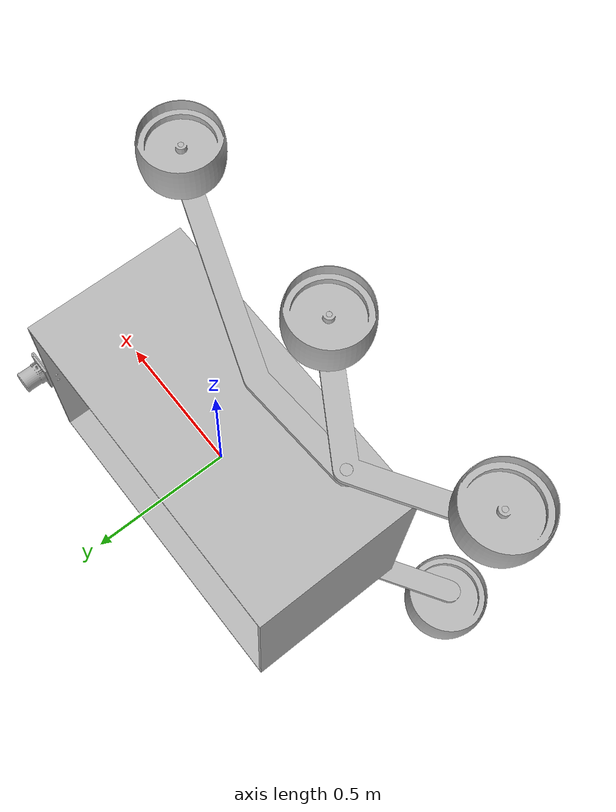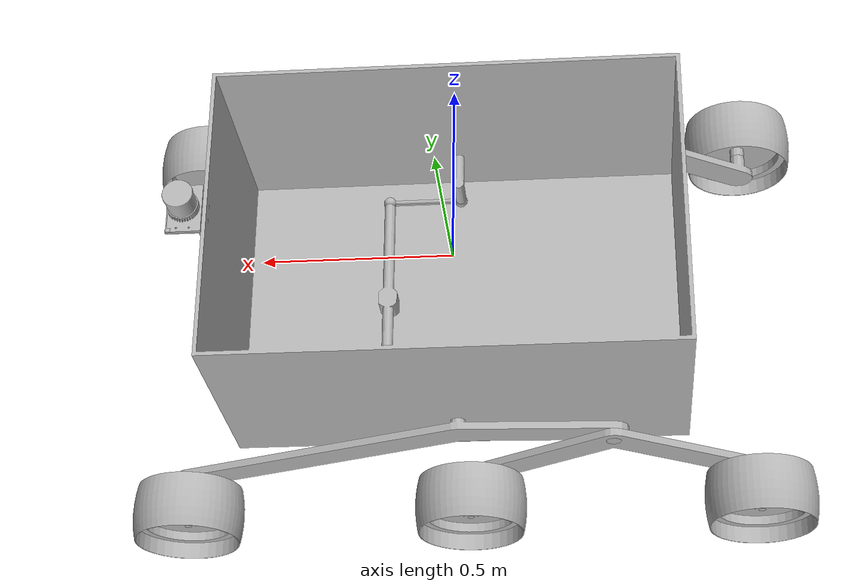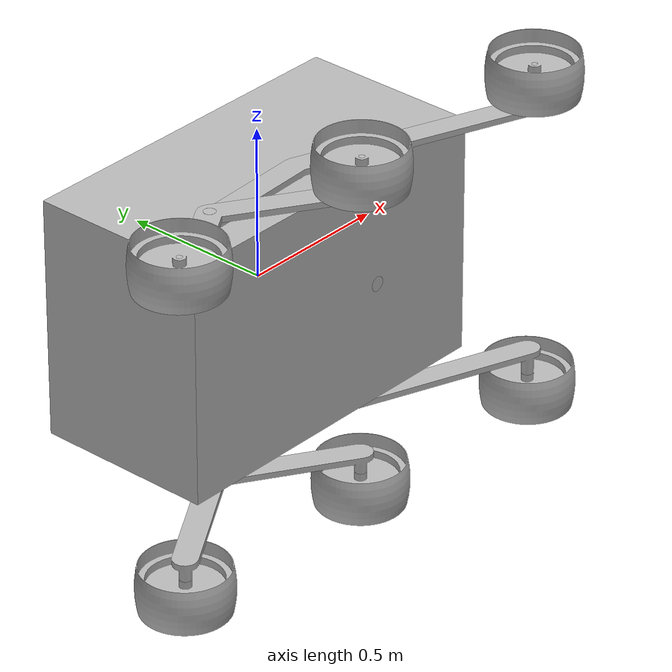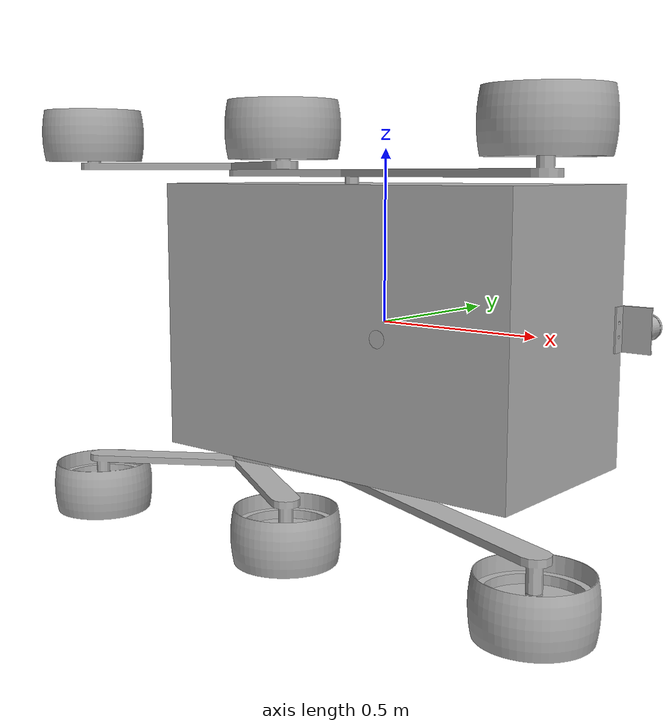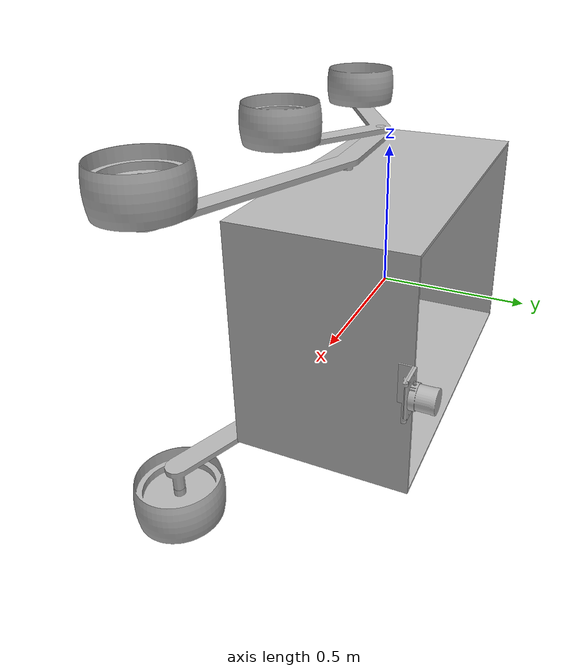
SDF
<sdf version='1.6'>
  <model name='MarsRover'>
    <link name='body'>
      <pose frame=''>0 0 0 0 -0 0</pose>
      <inertial>
        <pose frame=''>0.00423 -0.079647 0 0 -0 0</pose>
        <mass>33.158</mass>
        <inertia>
          <ixx>4.50698</ixx>
          <ixy>-0.0543417</ixy>
          <ixz>1.31726e-14</ixz>
          <iyy>9.38603</iyy>
          <iyz>7.45016e-16</iyz>
          <izz>7.52062</izz>
        </inertia>
      </inertial>
      <collision name='body_collision'>
        <pose frame=''>0 0 0 0 -0 0</pose>
        <geometry>
          <mesh>
            <scale>1 1 1</scale>
            <uri>model://MarsRover/meshes/body.STL</uri>
          </mesh>
        </geometry>
      </collision>
      <collision name='body_fixed_joint_lump__LiDARBodyCon_collision_1'>
        <pose frame=''>0.6475 0.295 0 0 -0 0</pose>
        <geometry>
          <mesh>
            <scale>1 1 1</scale>
            <uri>model://MarsRover/meshes/LiDARBodyCon.STL</uri>
          </mesh>
        </geometry>
      </collision>
      <visual name='body_visual'>
        <pose frame=''>0 0 0 0 -0 0</pose>
        <geometry>
          <mesh>
            <scale>1 1 1</scale>
            <uri>model://MarsRover/meshes/body.STL</uri>
          </mesh>
        </geometry>
      </visual>
      <visual name='body_fixed_joint_lump__LiDARBodyCon_visual_1'>
        <pose frame=''>0.6475 0.295 0 0 -0 0</pose>
        <geometry>
          <mesh>
            <scale>1 1 1</scale>
            <uri>model://MarsRover/meshes/LiDARBodyCon.STL</uri>
          </mesh>
        </geometry>
      </visual>
    </link>
    <link name='DiffBar'>
      <pose frame=''>0.20043 -0.225 0 0 -0 0</pose>
      <inertial>
        <pose frame=''>0 -0.022313 0 0 -0 0</pose>
        <mass>1.4917</mass>
        <inertia>
          <ixx>0.0303857</ixx>
          <ixy>-4.27359e-11</ixy>
          <ixz>6.00529e-07</ixz>
          <iyy>0.0300953</iyy>
          <iyz>1.87977e-08</iyz>
          <izz>0.000583956</izz>
        </inertia>
      </inertial>
      <collision name='DiffBar_collision'>
        <pose frame=''>0 0 0 0 -0 0</pose>
        <geometry>
          <mesh>
            <scale>1 1 1</scale>
            <uri>model://MarsRover/meshes/DiffBar.STL</uri>
          </mesh>
        </geometry>
      </collision>
      <visual name='DiffBar_visual'>
        <pose frame=''>0 0 0 0 -0 0</pose>
        <geometry>
          <mesh>
            <scale>1 1 1</scale>
            <uri>model://MarsRover/meshes/DiffBar.STL</uri>
          </mesh>
        </geometry>
      </visual>
    </link>
    <joint name='joint_body_DiffBar' type='revolute'>
      <child>DiffBar</child>
      <parent>body</parent>
      <axis>
        <xyz>0 1 0</xyz>
        <limit>
          <lower>-1e+16</lower>
          <upper>1e+16</upper>
        </limit>
        <dynamics>
          <spring_reference>0</spring_reference>
          <spring_stiffness>0</spring_stiffness>
        </dynamics>
        <use_parent_model_frame>1</use_parent_model_frame>
      </axis>
    </joint>
    <link name='LeftMainRocker'>
      <pose frame=''>0 -0.155 -0.395 0 -0 0</pose>
      <inertial>
        <pose frame=''>0.194777 -0.101638 -0.032219 0 -0 0</pose>
        <mass>2.31659</mass>
        <inertia>
          <ixx>0.0253183</ixx>
          <ixy>0.0763954</ixy>
          <ixz>0.00562994</ixz>
          <iyy>0.301511</iyy>
          <iyz>-0.00212773</iyz>
          <izz>0.322974</izz>
        </inertia>
      </inertial>
      <collision name='LeftMainRocker_collision'>
        <pose frame=''>0 0 0 0 -0 0</pose>
        <geometry>
          <mesh>
            <scale>1 1 1</scale>
            <uri>model://MarsRover/meshes/LeftMainRocker.STL</uri>
          </mesh>
        </geometry>
      </collision>
      <visual name='LeftMainRocker_visual'>
        <pose frame=''>0 0 0 0 -0 0</pose>
        <geometry>
          <mesh>
            <scale>1 1 1</scale>
            <uri>model://MarsRover/meshes/LeftMainRocker.STL</uri>
          </mesh>
        </geometry>
      </visual>
    </link>
    <joint name='joint_body_LeftMainRocker' type='revolute'>
      <child>LeftMainRocker</child>
      <parent>body</parent>
      <axis>
        <xyz>0 0 1</xyz>
        <limit>
          <lower>-1e+16</lower>
          <upper>1e+16</upper>
        </limit>
        <dynamics>
          <spring_reference>0</spring_reference>
          <spring_stiffness>0</spring_stiffness>
        </dynamics>
        <use_parent_model_frame>1</use_parent_model_frame>
      </axis>
    </joint>
    <link name='LeftDiffBarLink'>
      <pose frame=''>-0.000408 -0.239999 -0.3 0 -0 0</pose>
      <inertial>
        <pose frame=''>0.100845 0 0 0 -0 0</pose>
        <mass>0.200751</mass>
        <inertia>
          <ixx>1.70942e-05</ixx>
          <ixy>1.00927e-19</ixy>
          <ixz>4.58491e-19</ixz>
          <iyy>0.00141233</iyy>
          <iyz>1.74567e-10</iyz>
          <izz>0.00141234</izz>
        </inertia>
      </inertial>
      <collision name='LeftDiffBarLink_collision'>
        <pose frame=''>0 0 0 0 -0 0</pose>
        <geometry>
          <mesh>
            <scale>1 1 1</scale>
            <uri>model://MarsRover/meshes/LeftDiffBarLink.STL</uri>
          </mesh>
        </geometry>
      </collision>
      <visual name='LeftDiffBarLink_visual'>
        <pose frame=''>0 0 0 0 -0 0</pose>
        <geometry>
          <mesh>
            <scale>1 1 1</scale>
            <uri>model://MarsRover/meshes/LeftDiffBarLink.STL</uri>
          </mesh>
        </geometry>
      </visual>
    </link>
    <joint name='joint_LeftMainRocker_DiffBarLink' type='revolute'>
      <child>LeftDiffBarLink</child>
      <parent>LeftMainRocker</parent>
      <axis>
        <xyz>1 0 0</xyz>
        <limit>
          <lower>-1e+16</lower>
          <upper>1e+16</upper>
        </limit>
        <dynamics>
          <spring_reference>0</spring_reference>
          <spring_stiffness>0</spring_stiffness>
        </dynamics>
        <use_parent_model_frame>1</use_parent_model_frame>
      </axis>
    </joint>
    <link name='LeftFrontWheel'>
      <pose frame=''>0.75893 -0.434323 -0.54 0 -0 0</pose>
      <inertial>
        <pose frame=''>0 0 0 0 -0 0</pose>
        <mass>2.468</mass>
        <inertia>
          <ixx>0.0218762</ixx>
          <ixy>1.0907e-17</ixy>
          <ixz>1.13672e-18</ixz>
          <iyy>0.0218762</iyy>
          <iyz>4.20718e-18</iyz>
          <izz>0.0405258</izz>
        </inertia>
      </inertial>
      <collision name='LeftFrontWheel_collision'>
        <pose frame=''>0 0 0 0 -0 0</pose>
        <geometry>
          <mesh>
            <scale>1 1 1</scale>
            <uri>model://MarsRover/meshes/LeftFrontWheel.STL</uri>
          </mesh>
        </geometry>
      </collision>
      <visual name='LeftFrontWheel_visual'>
        <pose frame=''>0 0 0 0 -0 0</pose>
        <geometry>
          <mesh>
            <scale>1 1 1</scale>
            <uri>model://MarsRover/meshes/LeftFrontWheel.STL</uri>
          </mesh>
        </geometry>
      </visual>
    </link>
    <joint name='joint_LeftMainRocker_LeftFrontWheel' type='revolute'>
      <child>LeftFrontWheel</child>
      <parent>LeftMainRocker</parent>
      <axis>
        <xyz>0 0 -1</xyz>
        <limit>
          <lower>-1e+16</lower>
          <upper>1e+16</upper>
        </limit>
        <dynamics>
          <spring_reference>0</spring_reference>
          <spring_stiffness>0</spring_stiffness>
        </dynamics>
        <use_parent_model_frame>1</use_parent_model_frame>
      </axis>
    </joint>
    <link name='LeftViceRocker'>
      <pose frame=''>-0.400877 -0.178072 -0.45 0 -0 0</pose>
      <inertial>
        <pose frame=''>0.000325 -0.142829 -0.004578 0 -0 0</pose>
        <mass>1.70194</mass>
        <inertia>
          <ixx>0.0116408</ixx>
          <ixy>-0.000234839</ixy>
          <ixz>1.79349e-06</ixz>
          <iyy>0.114866</iyy>
          <iyz>-0.000788349</iyz>
          <izz>0.125482</izz>
        </inertia>
      </inertial>
      <collision name='LeftViceRocker_collision'>
        <pose frame=''>0 0 0 0 -0 0</pose>
        <geometry>
          <mesh>
            <scale>1 1 1</scale>
            <uri>model://MarsRover/meshes/LeftViceRocker.STL</uri>
          </mesh>
        </geometry>
      </collision>
      <visual name='LeftViceRocker_visual'>
        <pose frame=''>0 0 0 0 -0 0</pose>
        <geometry>
          <mesh>
            <scale>1 1 1</scale>
            <uri>model://MarsRover/meshes/LeftViceRocker.STL</uri>
          </mesh>
        </geometry>
      </visual>
    </link>
    <joint name='joint_LeftMainRocker_LeftViceRocker' type='revolute'>
      <child>LeftViceRocker</child>
      <parent>LeftMainRocker</parent>
      <axis>
        <xyz>0 0 1</xyz>
        <limit>
          <lower>-1e+16</lower>
          <upper>1e+16</upper>
        </limit>
        <dynamics>
          <spring_reference>0</spring_reference>
          <spring_stiffness>0</spring_stiffness>
        </dynamics>
        <use_parent_model_frame>1</use_parent_model_frame>
      </axis>
    </joint>
    <link name='LeftMiddleWheel'>
      <pose frame=''>-0.012834 -0.421204 -0.54 0 -0 0</pose>
      <inertial>
        <pose frame=''>0 -0 0 0 -0 0</pose>
        <mass>2.468</mass>
        <inertia>
          <ixx>0.0218762</ixx>
          <ixy>-1.19256e-17</ixy>
          <ixz>-8.5663e-19</ixz>
          <iyy>0.0218762</iyy>
          <iyz>4.71483e-18</iyz>
          <izz>0.0405258</izz>
        </inertia>
      </inertial>
      <collision name='LeftMiddleWheel_collision'>
        <pose frame=''>0 0 0 0 -0 0</pose>
        <geometry>
          <mesh>
            <scale>1 1 1</scale>
            <uri>model://MarsRover/meshes/LeftMiddleWheel.STL</uri>
          </mesh>
        </geometry>
      </collision>
      <visual name='LeftMiddleWheel_visual'>
        <pose frame=''>0 0 0 0 -0 0</pose>
        <geometry>
          <mesh>
            <scale>1 1 1</scale>
            <uri>model://MarsRover/meshes/LeftMiddleWheel.STL</uri>
          </mesh>
        </geometry>
      </visual>
    </link>
    <joint name='joint_LeftViceRocker_LeftMiddleWheel' type='revolute'>
      <child>LeftMiddleWheel</child>
      <parent>LeftViceRocker</parent>
      <axis>
        <xyz>0 0 -1</xyz>
        <limit>
          <lower>-1e+16</lower>
          <upper>1e+16</upper>
        </limit>
        <dynamics>
          <spring_reference>0</spring_reference>
          <spring_stiffness>0</spring_stiffness>
        </dynamics>
        <use_parent_model_frame>1</use_parent_model_frame>
      </axis>
    </joint>
    <link name='LeftRearWheel'>
      <pose frame=''>-0.787809 -0.422967 -0.54 0 -0 0</pose>
      <inertial>
        <pose frame=''>0 0 0 0 -0 0</pose>
        <mass>2.468</mass>
        <inertia>
          <ixx>0.0218762</ixx>
          <ixy>-5.75837e-18</ixy>
          <ixz>-1.27696e-18</ixz>
          <iyy>0.0218762</iyy>
          <iyz>1.0905e-19</iyz>
          <izz>0.0405258</izz>
        </inertia>
      </inertial>
      <collision name='LeftRearWheel_collision'>
        <pose frame=''>0 0 0 0 -0 0</pose>
        <geometry>
          <mesh>
            <scale>1 1 1</scale>
            <uri>model://MarsRover/meshes/LeftRearWheel.STL</uri>
          </mesh>
        </geometry>
      </collision>
      <visual name='LeftRearWheel_visual'>
        <pose frame=''>0 0 0 0 -0 0</pose>
        <geometry>
          <mesh>
            <scale>1 1 1</scale>
            <uri>model://MarsRover/meshes/LeftRearWheel.STL</uri>
          </mesh>
        </geometry>
      </visual>
    </link>
    <joint name='joit_LeftViceRocker_LeftRearWheel' type='revolute'>
      <child>LeftRearWheel</child>
      <parent>LeftViceRocker</parent>
      <axis>
        <xyz>0 0 -1</xyz>
        <limit>
          <lower>-1e+16</lower>
          <upper>1e+16</upper>
        </limit>
        <dynamics>
          <spring_reference>0</spring_reference>
          <spring_stiffness>0</spring_stiffness>
        </dynamics>
        <use_parent_model_frame>1</use_parent_model_frame>
      </axis>
    </joint>
    <link name='LiDARSupport'>
      <pose frame=''>0.6 0.308 0 0 -0 0</pose>
      <inertial>
        <pose frame=''>0.04418 0.023714 8.5e-05 0 -0 0</pose>
        <mass>0.71213</mass>
        <inertia>
          <ixx>0.00100104</ixx>
          <ixy>-1.61748e-05</ixy>
          <ixz>-4.95355e-08</ixz>
          <iyy>0.000810936</iyy>
          <iyz>5.23263e-07</iyz>
          <izz>0.00082535</izz>
        </inertia>
      </inertial>
      <collision name='LiDARSupport_collision'>
        <pose frame=''>0 0 0 0 -0 0</pose>
        <geometry>
          <mesh>
            <scale>1 1 1</scale>
            <uri>model://MarsRover/meshes/LiDARSupport.STL</uri>
          </mesh>
        </geometry>
      </collision>
      <collision name='LiDARSupport_fixed_joint_lump__LiDAR_collision_1'>
        <pose frame=''>0.045 0.0504 0 0 -0 0</pose>
        <geometry>
          <mesh>
            <scale>1 1 1</scale>
            <uri>model://MarsRover/meshes/LiDAR.STL</uri>
          </mesh>
        </geometry>
      </collision>
      <visual name='LiDARSupport_visual'>
        <pose frame=''>0 0 0 0 -0 0</pose>
        <geometry>
          <mesh>
            <scale>1 1 1</scale>
            <uri>model://MarsRover/meshes/LiDARSupport.STL</uri>
          </mesh>
        </geometry>
      </visual>
      <visual name='LiDARSupport_fixed_joint_lump__LiDAR_visual_1'>
        <pose frame=''>0.045 0.0504 0 0 -0 0</pose>
        <geometry>
          <mesh>
            <scale>1 1 1</scale>
            <uri>model://MarsRover/meshes/LiDAR.STL</uri>
          </mesh>
        </geometry>
      </visual>
    </link>
    <joint name='joint_LiDARBodyCon_LiDARSupport' type='revolute'>
      <child>LiDARSupport</child>
      <parent>body</parent>
      <axis>
        <xyz>0 0 -1</xyz>
        <limit>
          <lower>0</lower>
          <upper>0</upper>
          <effort>0</effort>
          <velocity>0</velocity>
        </limit>
        <dynamics>
          <spring_reference>0</spring_reference>
          <spring_stiffness>0</spring_stiffness>
        </dynamics>
        <use_parent_model_frame>1</use_parent_model_frame>
      </axis>
    </joint>
    <link name='RightMainRocker'>
      <pose frame=''>0 -0.155 0.395 0 -0 0</pose>
      <inertial>
        <pose frame=''>0.194764 -0.101666 0.032219 0 -0 0</pose>
        <mass>2.31658</mass>
        <inertia>
          <ixx>0.0253401</ixx>
          <ixy>0.0764347</ixy>
          <ixz>-0.00562954</ixz>
          <iyy>0.301489</iyy>
          <iyz>0.00212853</iyz>
          <izz>0.322973</izz>
        </inertia>
      </inertial>
      <collision name='RightMainRocker_collision'>
        <pose frame=''>0 0 0 0 -0 0</pose>
        <geometry>
          <mesh>
            <scale>1 1 1</scale>
            <uri>model://MarsRover/meshes/RightMainRocker.STL</uri>
          </mesh>
        </geometry>
      </collision>
      <visual name='RightMainRocker_visual'>
        <pose frame=''>0 0 0 0 -0 0</pose>
        <geometry>
          <mesh>
            <scale>1 1 1</scale>
            <uri>model://MarsRover/meshes/RightMainRocker.STL</uri>
          </mesh>
        </geometry>
      </visual>
    </link>
    <joint name='joint_body_RightMainRocker' type='revolute'>
      <child>RightMainRocker</child>
      <parent>body</parent>
      <axis>
        <xyz>0 0 1</xyz>
        <limit>
          <lower>-1e+16</lower>
          <upper>1e+16</upper>
        </limit>
        <dynamics>
          <spring_reference>0</spring_reference>
          <spring_stiffness>0</spring_stiffness>
        </dynamics>
        <use_parent_model_frame>1</use_parent_model_frame>
      </axis>
    </joint>
    <link name='RightFrontWheel'>
      <pose frame=''>0.75889 -0.434431 0.54 0 -0 0</pose>
      <inertial>
        <pose frame=''>0 0 0 0 -0 0</pose>
        <mass>2.468</mass>
        <inertia>
          <ixx>0.0218762</ixx>
          <ixy>-2.6483e-18</ixy>
          <ixz>-7.75188e-19</ixz>
          <iyy>0.0218762</iyy>
          <iyz>6.00692e-18</iyz>
          <izz>0.0405258</izz>
        </inertia>
      </inertial>
      <collision name='RightFrontWheel_collision'>
        <pose frame=''>0 0 0 0 -0 0</pose>
        <geometry>
          <mesh>
            <scale>1 1 1</scale>
            <uri>model://MarsRover/meshes/RightFrontWheel.STL</uri>
          </mesh>
        </geometry>
      </collision>
      <visual name='RightFrontWheel_visual'>
        <pose frame=''>0 0 0 0 -0 0</pose>
        <geometry>
          <mesh>
            <scale>1 1 1</scale>
            <uri>model://MarsRover/meshes/RightFrontWheel.STL</uri>
          </mesh>
        </geometry>
      </visual>
    </link>
    <joint name='joint_LeftMainRocker_RightFrontWheel' type='revolute'>
      <child>RightFrontWheel</child>
      <parent>RightMainRocker</parent>
      <axis>
        <xyz>0 0 1</xyz>
        <limit>
          <lower>-1e+16</lower>
          <upper>1e+16</upper>
        </limit>
        <dynamics>
          <spring_reference>0</spring_reference>
          <spring_stiffness>0</spring_stiffness>
        </dynamics>
        <use_parent_model_frame>1</use_parent_model_frame>
      </axis>
    </joint>
    <link name='RightDiffBarLink'>
      <pose frame=''>-0.000421 -0.239999 0.3 0 -0 0</pose>
      <inertial>
        <pose frame=''>0.100845 0 0 0 -0 0</pose>
        <mass>0.200751</mass>
        <inertia>
          <ixx>1.70942e-05</ixx>
          <ixy>1.11353e-19</ixy>
          <ixz>-5.32414e-19</ixz>
          <iyy>0.00141234</iyy>
          <iyz>-2.61397e-10</iyz>
          <izz>0.00141233</izz>
        </inertia>
      </inertial>
      <collision name='RightDiffBarLink_collision'>
        <pose frame=''>0 0 0 0 -0 0</pose>
        <geometry>
          <mesh>
            <scale>1 1 1</scale>
            <uri>model://MarsRover/meshes/RightDiffBarLink.STL</uri>
          </mesh>
        </geometry>
      </collision>
      <visual name='RightDiffBarLink_visual'>
        <pose frame=''>0 0 0 0 -0 0</pose>
        <geometry>
          <mesh>
            <scale>1 1 1</scale>
            <uri>model://MarsRover/meshes/RightDiffBarLink.STL</uri>
          </mesh>
        </geometry>
      </visual>
    </link>
    <joint name='joint_RightMainRocker_DiffBarLink' type='revolute'>
      <child>RightDiffBarLink</child>
      <parent>RightMainRocker</parent>
      <axis>
        <xyz>1 0 0</xyz>
        <limit>
          <lower>-1e+16</lower>
          <upper>1e+16</upper>
        </limit>
        <dynamics>
          <spring_reference>0</spring_reference>
          <spring_stiffness>0</spring_stiffness>
        </dynamics>
        <use_parent_model_frame>1</use_parent_model_frame>
      </axis>
    </joint>
    <link name='RightViceRocker'>
      <pose frame=''>-0.40088 -0.178015 0.45 0 -0 0</pose>
      <inertial>
        <pose frame=''>-3.7e-05 -0.142829 0.004578 0 -0 0</pose>
        <mass>1.70194</mass>
        <inertia>
          <ixx>0.0116402</ixx>
          <ixy>2.70826e-05</ixy>
          <ixz>2.06832e-07</ixz>
          <iyy>0.114867</iyy>
          <iyz>0.000788351</iyz>
          <izz>0.125482</izz>
        </inertia>
      </inertial>
      <collision name='RightViceRocker_collision'>
        <pose frame=''>0 0 0 0 -0 0</pose>
        <geometry>
          <mesh>
            <scale>1 1 1</scale>
            <uri>model://MarsRover/meshes/RightViceRocker.STL</uri>
          </mesh>
        </geometry>
      </collision>
      <visual name='RightViceRocker_visual'>
        <pose frame=''>0 0 0 0 -0 0</pose>
        <geometry>
          <mesh>
            <scale>1 1 1</scale>
            <uri>model://MarsRover/meshes/RightViceRocker.STL</uri>
          </mesh>
        </geometry>
      </visual>
    </link>
    <joint name='joint_RightMainRocker_RightViceRocker' type='revolute'>
      <child>RightViceRocker</child>
      <parent>RightMainRocker</parent>
      <axis>
        <xyz>0 0 1</xyz>
        <limit>
          <lower>-1e+16</lower>
          <upper>1e+16</upper>
        </limit>
        <dynamics>
          <spring_reference>0</spring_reference>
          <spring_stiffness>0</spring_stiffness>
        </dynamics>
        <use_parent_model_frame>1</use_parent_model_frame>
      </axis>
    </joint>
    <link name='RightMiddleWheel'>
      <pose frame=''>-0.013455 -0.422131 0.54 0 -0 0</pose>
      <inertial>
        <pose frame=''>0 0 0 0 -0 0</pose>
        <mass>2.468</mass>
        <inertia>
          <ixx>0.0218762</ixx>
          <ixy>-1.86955e-18</ixy>
          <ixz>-5.65948e-19</ixz>
          <iyy>0.0218762</iyy>
          <iyz>-7.01089e-19</iyz>
          <izz>0.0405258</izz>
        </inertia>
      </inertial>
      <collision name='RightMiddleWheel_collision'>
        <pose frame=''>0 0 0 0 -0 0</pose>
        <geometry>
          <mesh>
            <scale>1 1 1</scale>
            <uri>model://MarsRover/meshes/RightMiddleWheel.STL</uri>
          </mesh>
        </geometry>
      </collision>
      <visual name='RightMiddleWheel_visual'>
        <pose frame=''>0 0 0 0 -0 0</pose>
        <geometry>
          <mesh>
            <scale>1 1 1</scale>
            <uri>model://MarsRover/meshes/RightMiddleWheel.STL</uri>
          </mesh>
        </geometry>
      </visual>
    </link>
    <joint name='joint_RightViceRocker_RightMiddleWheel' type='revolute'>
      <child>RightMiddleWheel</child>
      <parent>RightViceRocker</parent>
      <axis>
        <xyz>0 0 1</xyz>
        <limit>
          <lower>-1e+16</lower>
          <upper>1e+16</upper>
        </limit>
        <dynamics>
          <spring_reference>0</spring_reference>
          <spring_stiffness>0</spring_stiffness>
        </dynamics>
        <use_parent_model_frame>1</use_parent_model_frame>
      </axis>
    </joint>
    <link name='RightRearWheel'>
      <pose frame=''>-0.788433 -0.421928 0.54 0 -0 0</pose>
      <inertial>
        <pose frame=''>0 0 0 0 -0 0</pose>
        <mass>2.468</mass>
        <inertia>
          <ixx>0.0218762</ixx>
          <ixy>-8.49441e-18</ixy>
          <ixz>-2.20693e-18</ixz>
          <iyy>0.0218762</iyy>
          <iyz>-5.29188e-19</iyz>
          <izz>0.0405258</izz>
        </inertia>
      </inertial>
      <collision name='RightRearWheel_collision'>
        <pose frame=''>0 0 0 0 -0 0</pose>
        <geometry>
          <mesh>
            <scale>1 1 1</scale>
            <uri>model://MarsRover/meshes/RightRearWheel.STL</uri>
          </mesh>
        </geometry>
      </collision>
      <visual name='RightRearWheel_visual'>
        <pose frame=''>0 0 0 0 -0 0</pose>
        <geometry>
          <mesh>
            <scale>1 1 1</scale>
            <uri>model://MarsRover/meshes/RightRearWheel.STL</uri>
          </mesh>
        </geometry>
      </visual>
    </link>
    <joint name='joint_RightViceRocker_RightRearWheel' type='revolute'>
      <child>RightRearWheel</child>
      <parent>RightViceRocker</parent>
      <axis>
        <xyz>0 0 1</xyz>
        <limit>
          <lower>-1e+16</lower>
          <upper>1e+16</upper>
        </limit>
        <dynamics>
          <spring_reference>0</spring_reference>
          <spring_stiffness>0</spring_stiffness>
        </dynamics>
        <use_parent_model_frame>1</use_parent_model_frame>
      </axis>
    </joint>
  </model>
</sdf>
